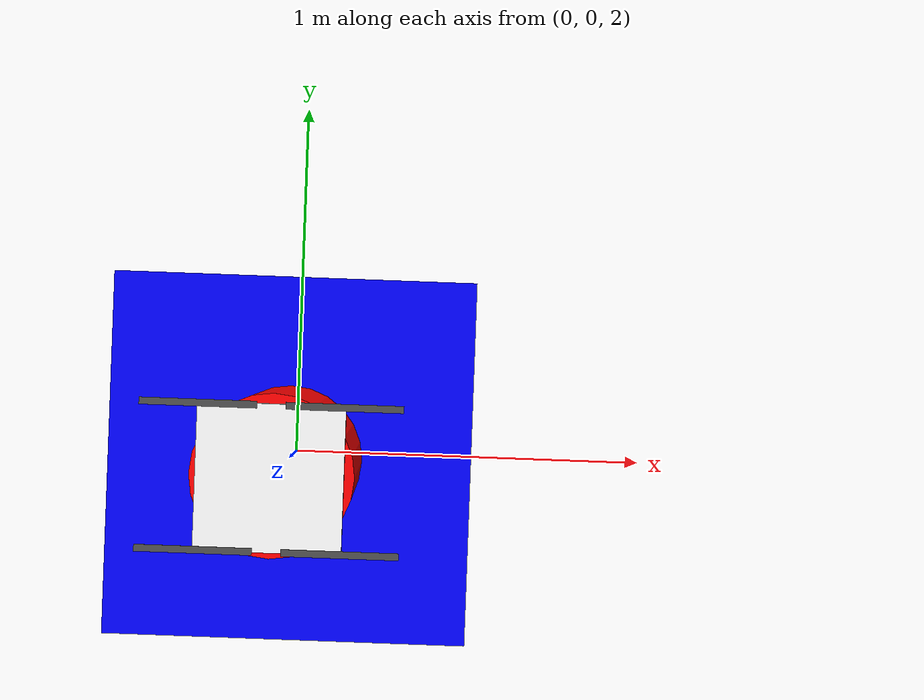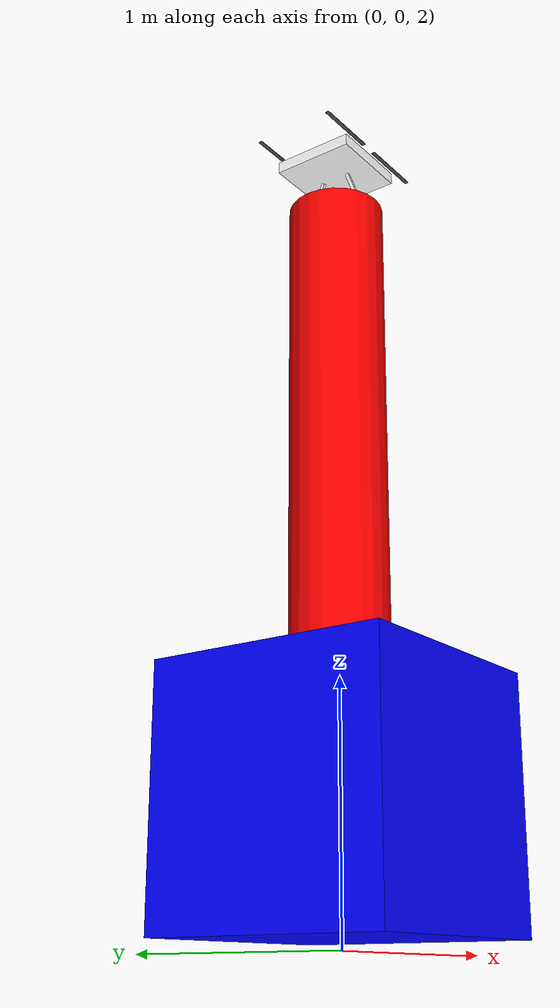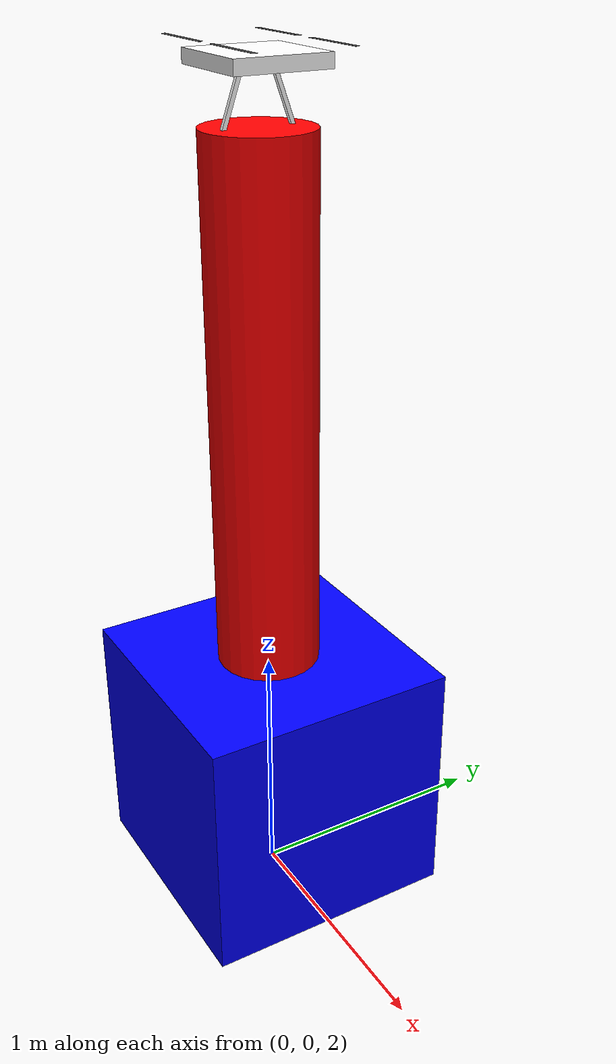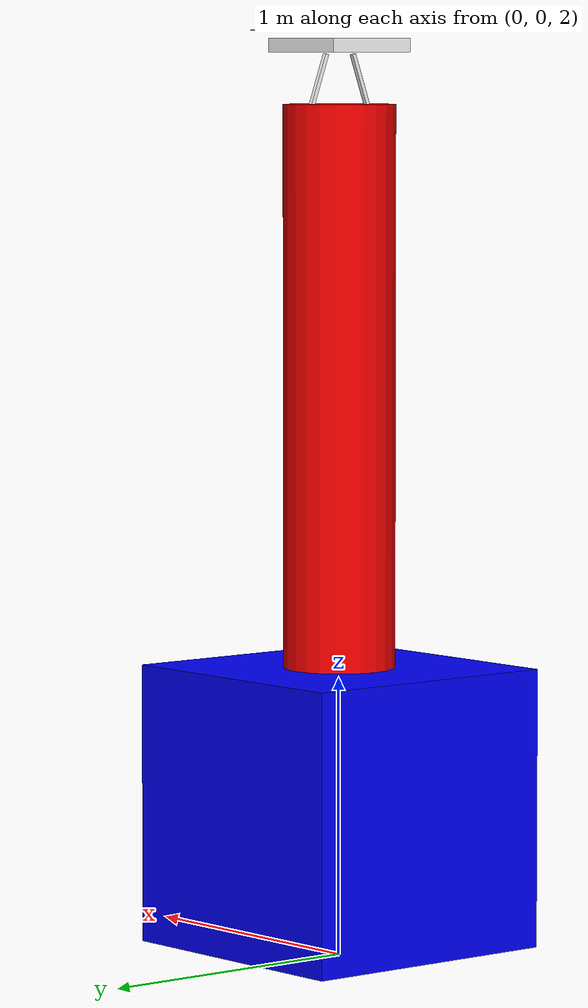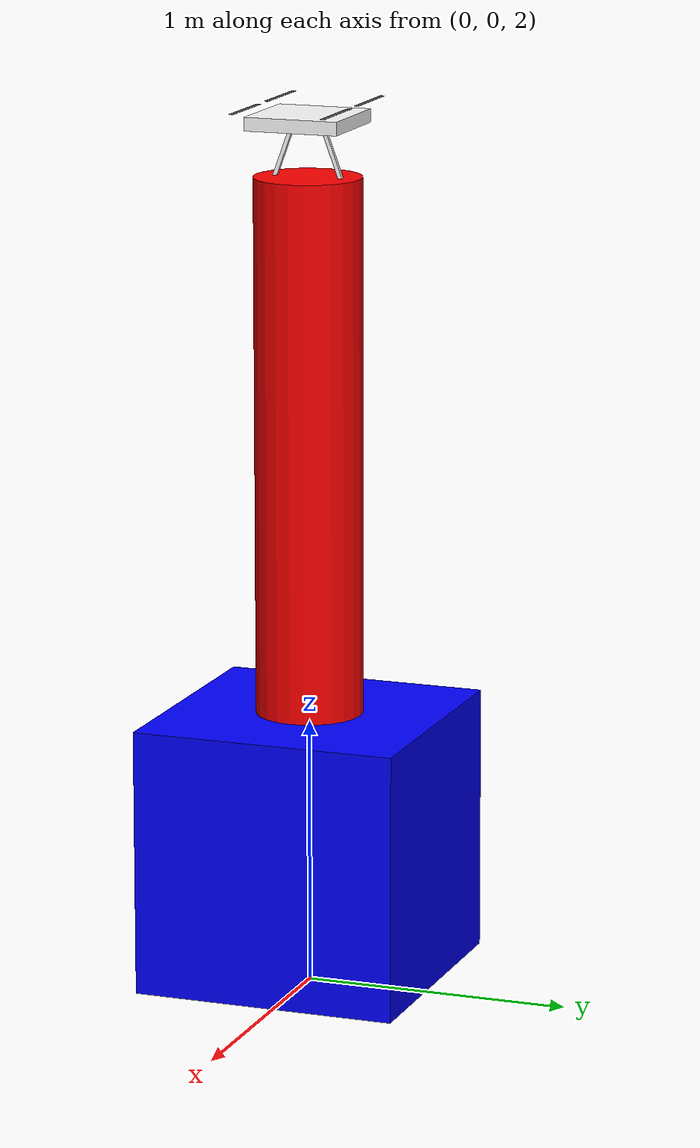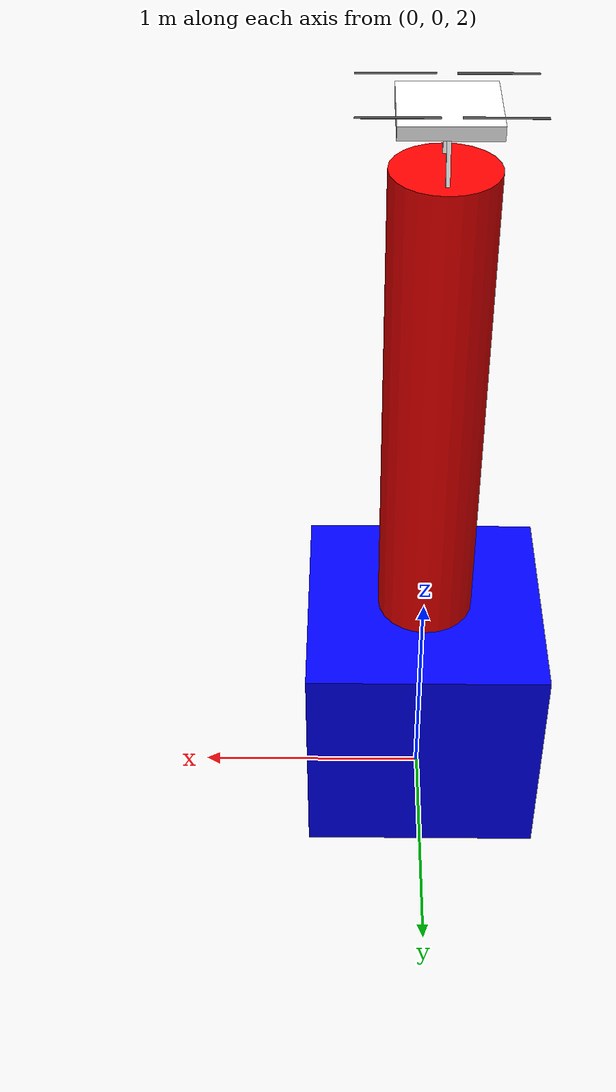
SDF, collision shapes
<?xml version="1.0" encoding="UTF-8"?>
<sdf version='1.9'>
  <model name='x500'>

    <include>
      <name>payload_0</name>
      <uri>model://x500/payloads/payload.sdf</uri>
      <pose relative_to="__model__">0 0 -2.7 0 0 0</pose>
    </include>

    <joint name="base_to_string" type="fixed">
      <parent>base_link</parent>
      <child>payload_0::string</child>
      <axis>
        <xyz>0 0 1</xyz>
      </axis>
    </joint>

    <pose>0 0 5.24 0 0 0</pose>
    <self_collide>false</self_collide>
    <static>false</static>
    <link name="base_link">
      <inertial>
        <mass>2.0</mass>
        <inertia>
          <ixx>0.02166666666666667</ixx>
          <ixy>0</ixy>
          <ixz>0</ixz>
          <iyy>0.02166666666666667</iyy>
          <iyz>0</iyz>
          <izz>0.04000000000000001</izz>
        </inertia>
      </inertial>
      <gravity>true</gravity>
      <velocity_decay/>
      <visual name="base_link_visual">
        <pose>0 0 .025 0 0 3.141592654</pose>
        <geometry>
          <mesh>
            <scale>1 1 1</scale>
            <uri>model://x500/meshes/NXP-HGD-CF.dae</uri>
          </mesh>
        </geometry>
      </visual>
      <visual name="5010_motor_base_0">
        <pose>0.174 0.174 .032 0 0 -.45</pose>
        <geometry>
          <mesh>
            <scale>1 1 1</scale>
            <uri>model://x500/meshes/5010Base.dae</uri>
          </mesh>
        </geometry>
      </visual>
      <visual name="5010_motor_base_1">
        <pose>-0.174 0.174 .032 0 0 -.45</pose>
        <geometry>
          <mesh>
            <scale>1 1 1</scale>
            <uri>model://x500/meshes/5010Base.dae</uri>
          </mesh>
        </geometry>
      </visual>
      <visual name="5010_motor_base_2">
        <pose>0.174 -0.174 .032 0 0 -.45</pose>
        <geometry>
          <mesh>
            <scale>1 1 1</scale>
            <uri>model://x500/meshes/5010Base.dae</uri>
          </mesh>
        </geometry>
      </visual>
      <visual name="5010_motor_base_3">
        <pose>-0.174 -0.174 .032 0 0 -.45</pose>
        <geometry>
          <mesh>
            <scale>1 1 1</scale>
            <uri>model://x500/meshes/5010Base.dae</uri>
          </mesh>
        </geometry>
      </visual>
      <visual name="NXP_FMUK66_FRONT">
        <pose>0.047 .001 .043 1 0 1.57</pose>
        <cast_shadows>false</cast_shadows>
        <geometry>
          <plane>
            <normal>0 0 1</normal>
            <size>.013 .007</size>
          </plane>
        </geometry>
        <material>
          <diffuse>1.0 1.0 1.0</diffuse>
          <specular>1.0 1.0 1.0</specular>
          <pbr>
            <metal>
              <albedo_map>model://x500/materials/textures/nxp.png</albedo_map>
            </metal>
          </pbr>
        </material>
      </visual>
      <visual name="NXP_FMUK66_TOP">
        <pose>-0.023 0 .0515 0 0 -1.57</pose>
        <cast_shadows>false</cast_shadows>
        <geometry>
          <plane>
            <normal>0 0 1</normal>
            <size>.013 .007</size>
          </plane>
        </geometry>
        <material>
          <diffuse>1.0 1.0 1.0</diffuse>
          <specular>1.0 1.0 1.0</specular>
          <pbr>
            <metal>
              <albedo_map>model://x500/materials/textures/nxp.png</albedo_map>
            </metal>
          </pbr>
        </material>
      </visual>
      <visual name="RDDRONE_FMUK66_TOP">
        <pose>-.03 0 .0515 0 0 -1.57</pose>
        <cast_shadows>false</cast_shadows>
        <geometry>
          <plane>
            <normal>0 0 1</normal>
            <size>.032 .0034</size>
          </plane>
        </geometry>
        <material>
          <diffuse>1.0 1.0 1.0</diffuse>
          <specular>1.0 1.0 1.0</specular>
          <pbr>
            <metal>
              <albedo_map>model://x500/materials/textures/rd.png</albedo_map>
            </metal>
          </pbr>
        </material>
      </visual>
      <collision name="base_link_collision_0">
        <pose>0 0 .007 0 0 0</pose>
        <geometry>
          <box>
            <size>0.35355339059327373 0.35355339059327373 0.05</size>
          </box>
        </geometry>
        <surface>
          <contact>
            <ode>
              <min_depth>0.001</min_depth>
              <max_vel>0</max_vel>
            </ode>
          </contact>
          <friction>
            <ode/>
          </friction>
        </surface>
      </collision>
      <collision name="base_link_collision_1">
        <pose>0 -0.098 -.123 -0.35 0 0</pose>
        <geometry>
          <box>
            <size>0.015 0.015 0.21</size>
          </box>
        </geometry>
        <surface>
          <contact>
            <ode>
              <min_depth>0.001</min_depth>
              <max_vel>0</max_vel>
            </ode>
          </contact>
          <friction>
            <ode/>
          </friction>
        </surface>
      </collision>
      <collision name="base_link_collision_2">
        <pose>0 0.098 -.123 0.35 0 0</pose>
        <geometry>
          <box>
            <size>0.015 0.015 0.21</size>
          </box>
        </geometry>
        <surface>
          <contact>
            <ode>
              <min_depth>0.001</min_depth>
              <max_vel>0</max_vel>
            </ode>
          </contact>
          <friction>
            <ode/>
          </friction>
        </surface>
      </collision>
      <collision name="base_link_collision_3">
        <pose>0 -0.132 -.2195 0 0 0</pose>
        <geometry>
          <box>
            <size>0.25 0.015 0.015</size>
          </box>
        </geometry>
        <surface>
          <contact>
            <ode>
              <min_depth>0.001</min_depth>
              <max_vel>0</max_vel>
            </ode>
          </contact>
          <friction>
            <ode/>
          </friction>
        </surface>
      </collision>
      <collision name="base_link_collision_4">
        <pose>0 0.132 -.2195 0 0 0</pose>
        <geometry>
          <box>
            <size>0.25 0.015 0.015</size>
          </box>
        </geometry>
        <surface>
          <contact>
            <ode>
              <min_depth>0.001</min_depth>
              <max_vel>0</max_vel>
            </ode>
          </contact>
          <friction>
            <ode/>
          </friction>
        </surface>
      </collision>
      <sensor name="imu_sensor" type="imu">
        <always_on>1</always_on>
        <update_rate>250</update_rate>
      </sensor>
    </link>
    <link name="rotor_0">
      <gravity>true</gravity>
      <self_collide>false</self_collide>
      <velocity_decay/>
      <pose>0.174 -0.174 0.06 0 0 0</pose>
      <inertial>
          <mass>0.016076923076923075</mass>
          <inertia>
            <ixx>3.8464910483993325e-07</ixx>
            <iyy>2.6115851691700804e-05</iyy>
            <izz>2.649858234714004e-05</izz>
          </inertia>
        </inertial>
      <visual name="rotor_0_visual">
        <pose>-0.022 -0.14638461538461536 -0.016 0 0 0</pose>
        <geometry>
          <mesh>
            <scale>0.8461538461538461 0.8461538461538461 0.8461538461538461</scale>
            <uri>model://x500/meshes/1345_prop_ccw.stl</uri>
          </mesh>
        </geometry>
        <material>
          <script>
            <name>Gazebo/DarkGrey</name>
            <uri>file://media/materials/scripts/gazebo.material</uri>
          </script>
        </material>
      </visual>
      <visual name="rotor_0_visual_motor_bell">
        <pose>0 0 -.032 0 0 0</pose>
        <geometry>
          <mesh>
            <scale>1 1 1</scale>
            <uri>model://x500/meshes/5010Bell.dae</uri>
          </mesh>
        </geometry>
      </visual>
      <collision name="rotor_0_collision">
        <pose>0 0 0 0 0 0 </pose>
        <geometry>
          <box>
            <size>0.2792307692307692 0.016923076923076923 0.0008461538461538462</size>
          </box>
        </geometry>
        <surface>
          <contact>
            <ode>
              <min_depth>0.001</min_depth>
              <max_vel>0</max_vel>
            </ode>
          </contact>
          <friction>
            <ode/>
          </friction>
        </surface>
      </collision>
    </link>
    <joint name="rotor_0_joint" type="revolute">
      <parent>base_link</parent>
      <child>rotor_0</child>
      <axis>
        <xyz>0 0 1</xyz>
        <limit>
          <lower>-1e+16</lower>
          <upper>1e+16</upper>
        </limit>
        <dynamics>
          <spring_reference>0</spring_reference>
          <spring_stiffness>0</spring_stiffness>
        </dynamics>
        <use_parent_model_frame>1</use_parent_model_frame>
      </axis>
    </joint>
    <link name="rotor_1">
      <gravity>true</gravity>
      <self_collide>false</self_collide>
      <velocity_decay/>
      <pose>-0.174 0.174 0.06 0 0 0</pose>
      <inertial>
          <mass>0.016076923076923075</mass>
          <inertia>
            <ixx>3.8464910483993325e-07</ixx>
            <iyy>2.6115851691700804e-05</iyy>
            <izz>2.649858234714004e-05</izz>
          </inertia>
        </inertial>
      <visual name="rotor_1_visual">
        <pose>-0.022 -0.14638461538461536 -0.016 0 0 0</pose>
        <geometry>
          <mesh>
            <scale>0.8461538461538461 0.8461538461538461 0.8461538461538461</scale>
            <uri>model://x500/meshes/1345_prop_ccw.stl</uri>
          </mesh>
        </geometry>
        <material>
          <script>
            <name>Gazebo/DarkGrey</name>
            <uri>file://media/materials/scripts/gazebo.material</uri>
          </script>
        </material>
      </visual>
      <visual name="rotor_1_visual_motor_top">
        <pose>0 0 -.032 0 0 0</pose>
        <geometry>
          <mesh>
            <scale>1 1 1</scale>
            <uri>model://x500/meshes/5010Bell.dae</uri>
          </mesh>
        </geometry>
      </visual>
      <collision name="rotor_1_collision">
        <pose>0 0 0 0 0 0 </pose>
        <geometry>
          <box>
            <size>0.2792307692307692 0.016923076923076923 0.0008461538461538462</size>
          </box>
        </geometry>
        <surface>
          <contact>
            <ode>
              <min_depth>0.001</min_depth>
              <max_vel>0</max_vel>
            </ode>
          </contact>
          <friction>
            <ode/>
          </friction>
        </surface>
      </collision>
    </link>
    <joint name="rotor_1_joint" type="revolute">
      <parent>base_link</parent>
      <child>rotor_1</child>
      <axis>
        <xyz>0 0 1</xyz>
        <limit>
          <lower>-1e+16</lower>
          <upper>1e+16</upper>
        </limit>
        <dynamics>
          <spring_reference>0</spring_reference>
          <spring_stiffness>0</spring_stiffness>
        </dynamics>
        <use_parent_model_frame>1</use_parent_model_frame>
      </axis>
    </joint>
    <link name="rotor_2">
      <gravity>true</gravity>
      <self_collide>false</self_collide>
      <velocity_decay/>
      <pose>0.174 0.174 0.06 0 0 0</pose>
      <inertial>
          <mass>0.016076923076923075</mass>
          <inertia>
            <ixx>3.8464910483993325e-07</ixx>
            <iyy>2.6115851691700804e-05</iyy>
            <izz>2.649858234714004e-05</izz>
          </inertia>
        </inertial>
      <visual name="rotor_2_visual">
        <pose>-0.022 -0.14638461538461536 -0.016 0 0 0</pose>
        <geometry>
          <mesh>
            <scale>0.8461538461538461 0.8461538461538461 0.8461538461538461</scale>
            <uri>model://x500/meshes/1345_prop_cw.stl</uri>
          </mesh>
        </geometry>
        <material>
          <script>
            <name>Gazebo/DarkGrey</name>
            <uri>file://media/materials/scripts/gazebo.material</uri>
          </script>
        </material>
      </visual>
      <visual name="rotor_2_visual_motor_top">
        <pose>0 0 -.032 0 0 0</pose>
        <geometry>
          <mesh>
            <scale>1 1 1</scale>
            <uri>model://x500/meshes/5010Bell.dae</uri>
          </mesh>
        </geometry>
      </visual>
      <collision name="rotor_2_collision">
        <pose>0 0 0 0 0 0 </pose>
        <geometry>
          <box>
            <size>0.2792307692307692 0.016923076923076923 0.0008461538461538462</size>
          </box>
        </geometry>
        <surface>
          <contact>
            <ode>
              <min_depth>0.001</min_depth>
              <max_vel>0</max_vel>
            </ode>
          </contact>
          <friction>
            <ode/>
          </friction>
        </surface>
      </collision>
    </link>
    <joint name="rotor_2_joint" type="revolute">
      <parent>base_link</parent>
      <child>rotor_2</child>
      <axis>
        <xyz>0 0 1</xyz>
        <limit>
          <lower>-1e+16</lower>
          <upper>1e+16</upper>
        </limit>
        <dynamics>
          <spring_reference>0</spring_reference>
          <spring_stiffness>0</spring_stiffness>
        </dynamics>
        <use_parent_model_frame>1</use_parent_model_frame>
      </axis>
    </joint>
    <link name="rotor_3">
      <gravity>true</gravity>
      <self_collide>false</self_collide>
      <velocity_decay/>
      <pose>-0.174 -0.174 0.06 0 0 0</pose>
      <inertial>
          <mass>0.016076923076923075</mass>
          <inertia>
            <ixx>3.8464910483993325e-07</ixx>
            <iyy>2.6115851691700804e-05</iyy>
            <izz>2.649858234714004e-05</izz>
          </inertia>
        </inertial>
      <visual name="rotor_3_visual">
        <pose>-0.022 -0.14638461538461536 -0.016 0 0 0</pose>
        <geometry>
          <mesh>
            <scale>0.8461538461538461 0.8461538461538461 0.8461538461538461</scale>
            <uri>model://x500/meshes/1345_prop_cw.stl</uri>
          </mesh>
        </geometry>
        <material>
          <script>
            <name>Gazebo/DarkGrey</name>
            <uri>file://media/materials/scripts/gazebo.material</uri>
          </script>
        </material>
      </visual>
      <visual name="rotor_3_visual_motor_top">
        <pose>0 0 -.032 0 0 0</pose>
        <geometry>
          <mesh>
            <scale>1 1 1</scale>
            <uri>model://x500/meshes/5010Bell.dae</uri>
          </mesh>
        </geometry>
      </visual>
      <collision name="rotor_3_collision">
        <pose>0 0 0 0 0 0 </pose>
        <geometry>
          <box>
            <size>0.2792307692307692 0.016923076923076923 0.0008461538461538462</size>
          </box>
        </geometry>
        <surface>
          <contact>
            <ode>
              <min_depth>0.001</min_depth>
              <max_vel>0</max_vel>
            </ode>
          </contact>
          <friction>
            <ode/>
          </friction>
        </surface>
      </collision>
    </link>
    <joint name="rotor_3_joint" type="revolute">
      <parent>base_link</parent>
      <child>rotor_3</child>
      <axis>
        <xyz>0 0 1</xyz>
        <limit>
          <lower>-1e+16</lower>
          <upper>1e+16</upper>
        </limit>
        <dynamics>
          <spring_reference>0</spring_reference>
          <spring_stiffness>0</spring_stiffness>
        </dynamics>
        <use_parent_model_frame>1</use_parent_model_frame>
      </axis>
    </joint>

   <plugin filename="ignition-gazebo-multicopter-motor-model-system" name="ignition::gazebo::systems::MulticopterMotorModel">
      <jointName>rotor_0_joint</jointName>
      <linkName>rotor_0</linkName>
      <turningDirection>ccw</turningDirection>
      <timeConstantUp>0.0125</timeConstantUp>
      <timeConstantDown>0.025</timeConstantDown>
      <maxRotVelocity>1000.0</maxRotVelocity>
      <motorConstant>8.54858e-06</motorConstant>
      <momentConstant>0.016</momentConstant>
      <commandSubTopic>command/motor_speed</commandSubTopic>
      <motorNumber>0</motorNumber>
      <rotorDragCoefficient>8.06428e-05</rotorDragCoefficient>
      <rollingMomentCoefficient>1e-06</rollingMomentCoefficient>
      <rotorVelocitySlowdownSim>10</rotorVelocitySlowdownSim>
      <motorType>velocity</motorType>
    </plugin>
    <plugin filename="gz-sim-multicopter-motor-model-system" name="gz::sim::systems::MulticopterMotorModel">
      <jointName>rotor_1_joint</jointName>
      <linkName>rotor_1</linkName>
      <turningDirection>ccw</turningDirection>
      <timeConstantUp>0.0125</timeConstantUp>
      <timeConstantDown>0.025</timeConstantDown>
      <maxRotVelocity>1000.0</maxRotVelocity>
      <motorConstant>8.54858e-06</motorConstant>
      <momentConstant>0.016</momentConstant>
      <commandSubTopic>command/motor_speed</commandSubTopic>
      <motorNumber>1</motorNumber>
      <rotorDragCoefficient>8.06428e-05</rotorDragCoefficient>
      <rollingMomentCoefficient>1e-06</rollingMomentCoefficient>
      <rotorVelocitySlowdownSim>10</rotorVelocitySlowdownSim>
      <motorType>velocity</motorType>
    </plugin>
    <plugin filename="gz-sim-multicopter-motor-model-system" name="gz::sim::systems::MulticopterMotorModel">
      <jointName>rotor_2_joint</jointName>
      <linkName>rotor_2</linkName>
      <turningDirection>cw</turningDirection>
      <timeConstantUp>0.0125</timeConstantUp>
      <timeConstantDown>0.025</timeConstantDown>
      <maxRotVelocity>1000.0</maxRotVelocity>
      <motorConstant>8.54858e-06</motorConstant>
      <momentConstant>0.016</momentConstant>
      <commandSubTopic>command/motor_speed</commandSubTopic>
      <motorNumber>2</motorNumber>
      <rotorDragCoefficient>8.06428e-05</rotorDragCoefficient>
      <rollingMomentCoefficient>1e-06</rollingMomentCoefficient>
      <rotorVelocitySlowdownSim>10</rotorVelocitySlowdownSim>
      <motorType>velocity</motorType>
    </plugin>
    <plugin filename="gz-sim-multicopter-motor-model-system" name="gz::sim::systems::MulticopterMotorModel">
      <jointName>rotor_3_joint</jointName>
      <linkName>rotor_3</linkName>
      <turningDirection>cw</turningDirection>
      <timeConstantUp>0.0125</timeConstantUp>
      <timeConstantDown>0.025</timeConstantDown>
      <maxRotVelocity>1000.0</maxRotVelocity>
      <motorConstant>8.54858e-06</motorConstant>
      <momentConstant>0.016</momentConstant>
      <commandSubTopic>command/motor_speed</commandSubTopic>
      <motorNumber>3</motorNumber>
      <rotorDragCoefficient>8.06428e-05</rotorDragCoefficient>
      <rollingMomentCoefficient>1e-06</rollingMomentCoefficient>
      <rotorVelocitySlowdownSim>10</rotorVelocitySlowdownSim>
      <motorType>velocity</motorType>
    </plugin>

    <plugin filename="libSampleSystem.so" name="sample_system::SampleSystem">
    </plugin>

  </model>
</sdf>

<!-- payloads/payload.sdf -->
<sdf version='1.9'>
  <model name='payload'>
    <link name="box">
      <gravity>true</gravity>
      <pose>0 0 0 0 0 0</pose>
      <inertial>
        <mass>1.0</mass>
        <inertia>
          <ixx>0.02166666666666667</ixx>
          <ixy>0</ixy>
          <ixz>0</ixz>
          <iyy>0.02166666666666667</iyy>
          <iyz>0</iyz>
          <izz>0.04000000000000001</izz>
        </inertia>
      </inertial>
      <collision name="collision">
        <geometry>
          <box>
            <size>1.0 1.0 1.0</size>
          </box>
        </geometry>
      </collision>
      <visual name="visual">
        <geometry>
          <box>
            <size>1.0 1.0 1.0</size>
          </box>
        </geometry>
        <material>
          <ambient>0.0 0.0 1.0 1</ambient>
          <diffuse>0.0 0.0 1.0 1</diffuse>
          <specular>0.0 0.0 1.0 1</specular>
        </material>
        <transparency>0.5</transparency>
      </visual>
    </link>

    <joint name="string_to_box" type="fixed">
      <parent>string</parent>
      <child>box</child>
      <axis>
        <xyz>0 0 1</xyz>
      </axis>
    </joint>

    <link name="string">
      <gravity>true</gravity>
      <pose relative_to='box'>0 0 1.5 0 0 0</pose>
      <inertial>
        <mass>0.1</mass>
        <inertia>
          <!-- ixx = iyy = (1/12) * m * (3 * r^2 + h^2) -->
          <!-- izz = (1/2) * m * r^2 -->
          <ixx>0.208583333</ixx>
          <ixy>0</ixy>
          <ixz>0</ixz>
          <iyy>0.208583333</iyy>
          <iyz>0</iyz>
          <izz>0.0005</izz>
        </inertia>
      </inertial>
      <collision name="collision">
        <geometry>
          <cylinder>
            <radius>0.2</radius>
            <length>2</length>
          </cylinder>
        </geometry>
      </collision>
      <visual name="visual">
        <geometry>
          <cylinder>
            <radius>0.25</radius>
            <length>2</length>
          </cylinder>
        </geometry>
        <material>
          <ambient>1.0 0.0 0.0 1</ambient>
          <diffuse>1.0 0.0 0.0 1</diffuse>
          <specular>1.0 0.0 0.0 1</specular>
        </material>
        <transparency>0.5</transparency>
      </visual>
    </link>

  </model>
</sdf>
